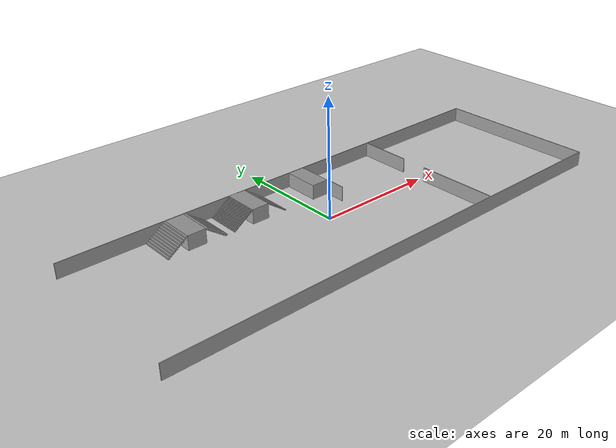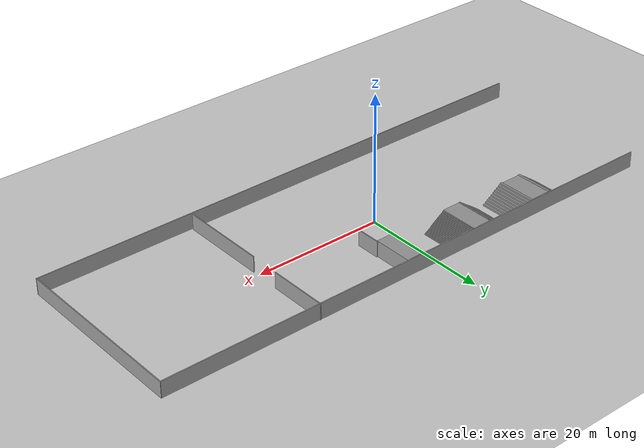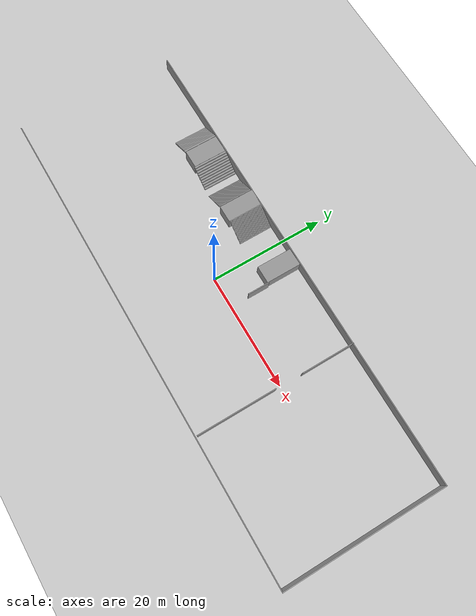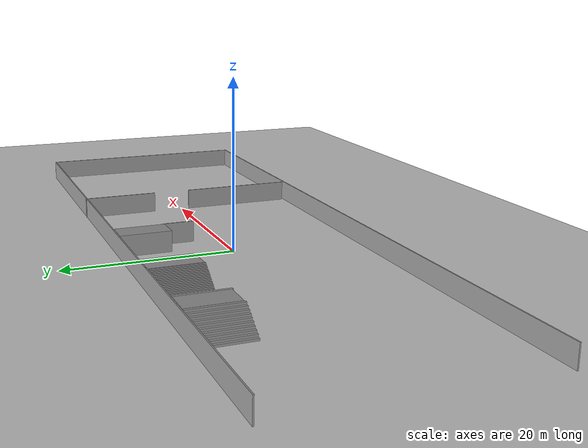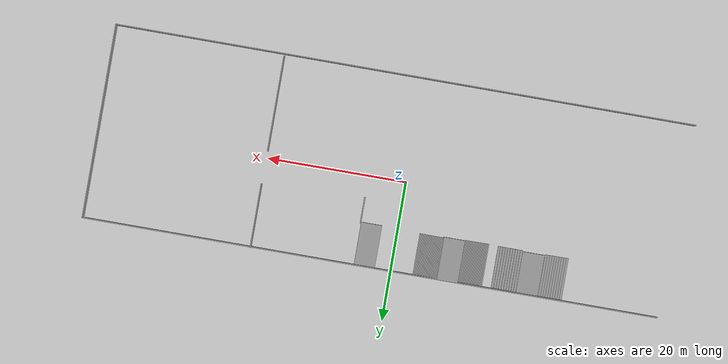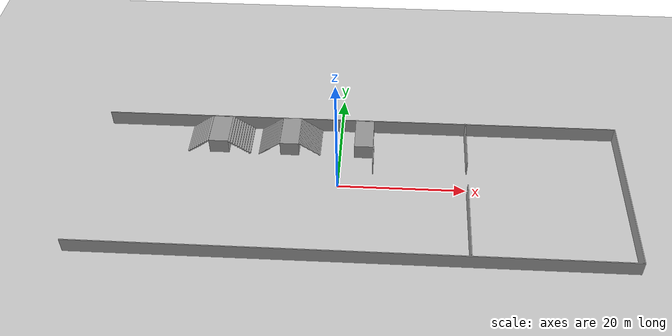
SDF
<sdf version="1.7">
 <world name="default">
  <model name="ground_plane">
   <static>1</static>
   <link name="link">
    <collision name="collision">
     <geometry><plane><normal>0 0 1</normal><size>100 100</size></plane></geometry>
     <surface>
      <contact><collide_bitmask>65535</collide_bitmask></contact>
      <friction><ode><mu>100</mu><mu2>50</mu2></ode></friction>
     </surface>
    </collision>
    <visual name="visual">
     <cast_shadows>0</cast_shadows>
     <geometry><plane><normal>0 0 1</normal><size>100 100</size></plane></geometry>
     <material>
      <script><uri>file://media/materials/scripts/gazebo.material</uri><name>Gazebo/Grey</name></script>
     </material>
    </visual>
   </link>
  </model>
  <model name="Parkour_0">
   <pose>2.61354 -1.10314 0 0 -0 0</pose>
   <link name="Stairs_4">
    <visual name="Stairs_4_Visual_0">
     <pose>1.19165 10.744 1.25 0 -0 0</pose>
     <geometry><box><size>3 6.05994 2.5</size></box></geometry>
     <material>
      <script><uri>file://media/materials/scripts/gazebo.material</uri><name>Gazebo/Grey</name></script>
      <ambient>1 1 1 1</ambient>
     </material>
     <meta><layer>0</layer></meta>
    </visual>
    <collision name="Stairs_4_Collision_0">
     <geometry><box><size>3 6.05994 2.5</size></box></geometry>
     <pose>1.19165 10.744 1.25 0 -0 0</pose>
    </collision>
   </link>
   <link name="Stairs_21">
    <visual name="Stairs_21_Visual_0">
     <pose>-10.7697 10.8664 1.25 0 -0 0</pose>
     <geometry><box><size>3 6.141 2.5</size></box></geometry>
     <material>
      <script><uri>file://media/materials/scripts/gazebo.material</uri><name>Gazebo/Grey</name></script>
      <ambient>1 1 1 1</ambient>
     </material>
     <meta><layer>0</layer></meta>
    </visual>
    <collision name="Stairs_21_Collision_0">
     <geometry><box><size>3 6.141 2.5</size></box></geometry>
     <pose>-10.7697 10.8664 1.25 0 -0 0</pose>
    </collision>
   </link>
   <link name="Stairs_22">
    <visual name="Stairs_22_Visual_0">
     <pose>-22.2123 10.8352 1.25 0 -0 0</pose>
     <geometry><box><size>3.154 5.86 2.5</size></box></geometry>
     <material>
      <script><uri>file://media/materials/scripts/gazebo.material</uri><name>Gazebo/Grey</name></script>
      <ambient>1 1 1 1</ambient>
     </material>
     <meta><layer>0</layer></meta>
    </visual>
    <collision name="Stairs_22_Collision_0">
     <geometry><box><size>3.154 5.86 2.5</size></box></geometry>
     <pose>-22.2123 10.8352 1.25 0 -0 0</pose>
    </collision>
   </link>
   <link name="Stair_fix_later">
    <visual name="Stair_fix_later_Visual_0">
     <pose>-5.89199 10.8984 0.0625 0 0 -1.5708</pose>
     <geometry><box><size>6 0.175 0.125</size></box></geometry>
     <material>
      <script><uri>file://media/materials/scripts/gazebo.material</uri><name>Gazebo/Grey</name></script>
      <ambient>1 1 1 1</ambient>
     </material>
     <meta><layer>0</layer></meta>
    </visual>
    <collision name="Stair_fix_later_Collision_0">
     <geometry><box><size>6 0.175 0.125</size></box></geometry>
     <pose>-5.89199 10.8984 0.0625 0 0 -1.5708</pose>
    </collision>
    <visual name="Stair_fix_later_Visual_1">
     <pose>-6.06699 10.8984 0.1875 0 0 -1.5708</pose>
     <geometry><box><size>6 0.175 0.125</size></box></geometry>
     <material>
      <script><uri>file://media/materials/scripts/gazebo.material</uri><name>Gazebo/Grey</name></script>
      <ambient>1 1 1 1</ambient>
     </material>
     <meta><layer>0</layer></meta>
    </visual>
    <collision name="Stair_fix_later_Collision_1">
     <geometry><box><size>6 0.175 0.125</size></box></geometry>
     <pose>-6.06699 10.8984 0.1875 0 0 -1.5708</pose>
    </collision>
    <visual name="Stair_fix_later_Visual_2">
     <pose>-6.24199 10.8984 0.3125 0 0 -1.5708</pose>
     <geometry><box><size>6 0.175 0.125</size></box></geometry>
     <material>
      <script><uri>file://media/materials/scripts/gazebo.material</uri><name>Gazebo/Grey</name></script>
      <ambient>1 1 1 1</ambient>
     </material>
     <meta><layer>0</layer></meta>
    </visual>
    <collision name="Stair_fix_later_Collision_2">
     <geometry><box><size>6 0.175 0.125</size></box></geometry>
     <pose>-6.24199 10.8984 0.3125 0 0 -1.5708</pose>
    </collision>
    <visual name="Stair_fix_later_Visual_3">
     <pose>-6.41699 10.8984 0.4375 0 0 -1.5708</pose>
     <geometry><box><size>6 0.175 0.125</size></box></geometry>
     <material>
      <script><uri>file://media/materials/scripts/gazebo.material</uri><name>Gazebo/Grey</name></script>
      <ambient>1 1 1 1</ambient>
     </material>
     <meta><layer>0</layer></meta>
    </visual>
    <collision name="Stair_fix_later_Collision_3">
     <geometry><box><size>6 0.175 0.125</size></box></geometry>
     <pose>-6.41699 10.8984 0.4375 0 0 -1.5708</pose>
    </collision>
    <visual name="Stair_fix_later_Visual_4">
     <pose>-6.59199 10.8984 0.5625 0 0 -1.5708</pose>
     <geometry><box><size>6 0.175 0.125</size></box></geometry>
     <material>
      <script><uri>file://media/materials/scripts/gazebo.material</uri><name>Gazebo/Grey</name></script>
      <ambient>1 1 1 1</ambient>
     </material>
     <meta><layer>0</layer></meta>
    </visual>
    <collision name="Stair_fix_later_Collision_4">
     <geometry><box><size>6 0.175 0.125</size></box></geometry>
     <pose>-6.59199 10.8984 0.5625 0 0 -1.5708</pose>
    </collision>
    <visual name="Stair_fix_later_Visual_5">
     <pose>-6.76699 10.8984 0.6875 0 0 -1.5708</pose>
     <geometry><box><size>6 0.175 0.125</size></box></geometry>
     <material>
      <script><uri>file://media/materials/scripts/gazebo.material</uri><name>Gazebo/Grey</name></script>
      <ambient>1 1 1 1</ambient>
     </material>
     <meta><layer>0</layer></meta>
    </visual>
    <collision name="Stair_fix_later_Collision_5">
     <geometry><box><size>6 0.175 0.125</size></box></geometry>
     <pose>-6.76699 10.8984 0.6875 0 0 -1.5708</pose>
    </collision>
    <visual name="Stair_fix_later_Visual_6">
     <pose>-6.94199 10.8984 0.8125 0 0 -1.5708</pose>
     <geometry><box><size>6 0.175 0.125</size></box></geometry>
     <material>
      <script><uri>file://media/materials/scripts/gazebo.material</uri><name>Gazebo/Grey</name></script>
      <ambient>1 1 1 1</ambient>
     </material>
     <meta><layer>0</layer></meta>
    </visual>
    <collision name="Stair_fix_later_Collision_6">
     <geometry><box><size>6 0.175 0.125</size></box></geometry>
     <pose>-6.94199 10.8984 0.8125 0 0 -1.5708</pose>
    </collision>
    <visual name="Stair_fix_later_Visual_7">
     <pose>-7.11699 10.8984 0.9375 0 0 -1.5708</pose>
     <geometry><box><size>6 0.175 0.125</size></box></geometry>
     <material>
      <script><uri>file://media/materials/scripts/gazebo.material</uri><name>Gazebo/Grey</name></script>
      <ambient>1 1 1 1</ambient>
     </material>
     <meta><layer>0</layer></meta>
    </visual>
    <collision name="Stair_fix_later_Collision_7">
     <geometry><box><size>6 0.175 0.125</size></box></geometry>
     <pose>-7.11699 10.8984 0.9375 0 0 -1.5708</pose>
    </collision>
    <visual name="Stair_fix_later_Visual_8">
     <pose>-7.29199 10.8984 1.0625 0 0 -1.5708</pose>
     <geometry><box><size>6 0.175 0.125</size></box></geometry>
     <material>
      <script><uri>file://media/materials/scripts/gazebo.material</uri><name>Gazebo/Grey</name></script>
      <ambient>1 1 1 1</ambient>
     </material>
     <meta><layer>0</layer></meta>
    </visual>
    <collision name="Stair_fix_later_Collision_8">
     <geometry><box><size>6 0.175 0.125</size></box></geometry>
     <pose>-7.29199 10.8984 1.0625 0 0 -1.5708</pose>
    </collision>
    <visual name="Stair_fix_later_Visual_9">
     <pose>-7.46699 10.8984 1.1875 0 0 -1.5708</pose>
     <geometry><box><size>6 0.175 0.125</size></box></geometry>
     <material>
      <script><uri>file://media/materials/scripts/gazebo.material</uri><name>Gazebo/Grey</name></script>
      <ambient>1 1 1 1</ambient>
     </material>
     <meta><layer>0</layer></meta>
    </visual>
    <collision name="Stair_fix_later_Collision_9">
     <geometry><box><size>6 0.175 0.125</size></box></geometry>
     <pose>-7.46699 10.8984 1.1875 0 0 -1.5708</pose>
    </collision>
    <visual name="Stair_fix_later_Visual_10">
     <pose>-7.64199 10.8984 1.3125 0 0 -1.5708</pose>
     <geometry><box><size>6 0.175 0.125</size></box></geometry>
     <material>
      <script><uri>file://media/materials/scripts/gazebo.material</uri><name>Gazebo/Grey</name></script>
      <ambient>1 1 1 1</ambient>
     </material>
     <meta><layer>0</layer></meta>
    </visual>
    <collision name="Stair_fix_later_Collision_10">
     <geometry><box><size>6 0.175 0.125</size></box></geometry>
     <pose>-7.64199 10.8984 1.3125 0 0 -1.5708</pose>
    </collision>
    <visual name="Stair_fix_later_Visual_11">
     <pose>-7.81699 10.8984 1.4375 0 0 -1.5708</pose>
     <geometry><box><size>6 0.175 0.125</size></box></geometry>
     <material>
      <script><uri>file://media/materials/scripts/gazebo.material</uri><name>Gazebo/Grey</name></script>
      <ambient>1 1 1 1</ambient>
     </material>
     <meta><layer>0</layer></meta>
    </visual>
    <collision name="Stair_fix_later_Collision_11">
     <geometry><box><size>6 0.175 0.125</size></box></geometry>
     <pose>-7.81699 10.8984 1.4375 0 0 -1.5708</pose>
    </collision>
    <visual name="Stair_fix_later_Visual_12">
     <pose>-7.99199 10.8984 1.5625 0 0 -1.5708</pose>
     <geometry><box><size>6 0.175 0.125</size></box></geometry>
     <material>
      <script><uri>file://media/materials/scripts/gazebo.material</uri><name>Gazebo/Grey</name></script>
      <ambient>1 1 1 1</ambient>
     </material>
     <meta><layer>0</layer></meta>
    </visual>
    <collision name="Stair_fix_later_Collision_12">
     <geometry><box><size>6 0.175 0.125</size></box></geometry>
     <pose>-7.99199 10.8984 1.5625 0 0 -1.5708</pose>
    </collision>
    <visual name="Stair_fix_later_Visual_13">
     <pose>-8.16699 10.8984 1.6875 0 0 -1.5708</pose>
     <geometry><box><size>6 0.175 0.125</size></box></geometry>
     <material>
      <script><uri>file://media/materials/scripts/gazebo.material</uri><name>Gazebo/Grey</name></script>
      <ambient>1 1 1 1</ambient>
     </material>
     <meta><layer>0</layer></meta>
    </visual>
    <collision name="Stair_fix_later_Collision_13">
     <geometry><box><size>6 0.175 0.125</size></box></geometry>
     <pose>-8.16699 10.8984 1.6875 0 0 -1.5708</pose>
    </collision>
    <visual name="Stair_fix_later_Visual_14">
     <pose>-8.34199 10.8984 1.8125 0 0 -1.5708</pose>
     <geometry><box><size>6 0.175 0.125</size></box></geometry>
     <material>
      <script><uri>file://media/materials/scripts/gazebo.material</uri><name>Gazebo/Grey</name></script>
      <ambient>1 1 1 1</ambient>
     </material>
     <meta><layer>0</layer></meta>
    </visual>
    <collision name="Stair_fix_later_Collision_14">
     <geometry><box><size>6 0.175 0.125</size></box></geometry>
     <pose>-8.34199 10.8984 1.8125 0 0 -1.5708</pose>
    </collision>
    <visual name="Stair_fix_later_Visual_15">
     <pose>-8.51699 10.8984 1.9375 0 0 -1.5708</pose>
     <geometry><box><size>6 0.175 0.125</size></box></geometry>
     <material>
      <script><uri>file://media/materials/scripts/gazebo.material</uri><name>Gazebo/Grey</name></script>
      <ambient>1 1 1 1</ambient>
     </material>
     <meta><layer>0</layer></meta>
    </visual>
    <collision name="Stair_fix_later_Collision_15">
     <geometry><box><size>6 0.175 0.125</size></box></geometry>
     <pose>-8.51699 10.8984 1.9375 0 0 -1.5708</pose>
    </collision>
    <visual name="Stair_fix_later_Visual_16">
     <pose>-8.69199 10.8984 2.0625 0 0 -1.5708</pose>
     <geometry><box><size>6 0.175 0.125</size></box></geometry>
     <material>
      <script><uri>file://media/materials/scripts/gazebo.material</uri><name>Gazebo/Grey</name></script>
      <ambient>1 1 1 1</ambient>
     </material>
     <meta><layer>0</layer></meta>
    </visual>
    <collision name="Stair_fix_later_Collision_16">
     <geometry><box><size>6 0.175 0.125</size></box></geometry>
     <pose>-8.69199 10.8984 2.0625 0 0 -1.5708</pose>
    </collision>
    <visual name="Stair_fix_later_Visual_17">
     <pose>-8.86699 10.8984 2.1875 0 0 -1.5708</pose>
     <geometry><box><size>6 0.175 0.125</size></box></geometry>
     <material>
      <script><uri>file://media/materials/scripts/gazebo.material</uri><name>Gazebo/Grey</name></script>
      <ambient>1 1 1 1</ambient>
     </material>
     <meta><layer>0</layer></meta>
    </visual>
    <collision name="Stair_fix_later_Collision_17">
     <geometry><box><size>6 0.175 0.125</size></box></geometry>
     <pose>-8.86699 10.8984 2.1875 0 0 -1.5708</pose>
    </collision>
    <visual name="Stair_fix_later_Visual_18">
     <pose>-9.04199 10.8984 2.3125 0 0 -1.5708</pose>
     <geometry><box><size>6 0.175 0.125</size></box></geometry>
     <material>
      <script><uri>file://media/materials/scripts/gazebo.material</uri><name>Gazebo/Grey</name></script>
      <ambient>1 1 1 1</ambient>
     </material>
     <meta><layer>0</layer></meta>
    </visual>
    <collision name="Stair_fix_later_Collision_18">
     <geometry><box><size>6 0.175 0.125</size></box></geometry>
     <pose>-9.04199 10.8984 2.3125 0 0 -1.5708</pose>
    </collision>
    <visual name="Stair_fix_later_Visual_19">
     <pose>-9.21699 10.8984 2.4375 0 0 -1.5708</pose>
     <geometry><box><size>6 0.175 0.125</size></box></geometry>
     <material>
      <script><uri>file://media/materials/scripts/gazebo.material</uri><name>Gazebo/Grey</name></script>
      <ambient>1 1 1 1</ambient>
     </material>
     <meta><layer>0</layer></meta>
    </visual>
    <collision name="Stair_fix_later_Collision_19">
     <geometry><box><size>6 0.175 0.125</size></box></geometry>
     <pose>-9.21699 10.8984 2.4375 0 0 -1.5708</pose>
    </collision>
   </link>
   <link name="Stairs_5">
    <visual name="Stairs_5_Visual_0">
     <pose>-15.7266 10.7113 0.0625 0 -0 1.5708</pose>
     <geometry><box><size>6 0.175 0.125</size></box></geometry>
     <material>
      <script><uri>file://media/materials/scripts/gazebo.material</uri><name>Gazebo/Grey</name></script>
      <ambient>1 1 1 1</ambient>
     </material>
     <meta><layer>0</layer></meta>
    </visual>
    <collision name="Stairs_5_Collision_0">
     <geometry><box><size>6 0.175 0.125</size></box></geometry>
     <pose>-15.7266 10.7113 0.0625 0 -0 1.5708</pose>
    </collision>
    <visual name="Stairs_5_Visual_1">
     <pose>-15.5516 10.7113 0.1875 0 -0 1.5708</pose>
     <geometry><box><size>6 0.175 0.125</size></box></geometry>
     <material>
      <script><uri>file://media/materials/scripts/gazebo.material</uri><name>Gazebo/Grey</name></script>
      <ambient>1 1 1 1</ambient>
     </material>
     <meta><layer>0</layer></meta>
    </visual>
    <collision name="Stairs_5_Collision_1">
     <geometry><box><size>6 0.175 0.125</size></box></geometry>
     <pose>-15.5516 10.7113 0.1875 0 -0 1.5708</pose>
    </collision>
    <visual name="Stairs_5_Visual_2">
     <pose>-15.3766 10.7113 0.3125 0 -0 1.5708</pose>
     <geometry><box><size>6 0.175 0.125</size></box></geometry>
     <material>
      <script><uri>file://media/materials/scripts/gazebo.material</uri><name>Gazebo/Grey</name></script>
      <ambient>1 1 1 1</ambient>
     </material>
     <meta><layer>0</layer></meta>
    </visual>
    <collision name="Stairs_5_Collision_2">
     <geometry><box><size>6 0.175 0.125</size></box></geometry>
     <pose>-15.3766 10.7113 0.3125 0 -0 1.5708</pose>
    </collision>
    <visual name="Stairs_5_Visual_3">
     <pose>-15.2016 10.7113 0.4375 0 -0 1.5708</pose>
     <geometry><box><size>6 0.175 0.125</size></box></geometry>
     <material>
      <script><uri>file://media/materials/scripts/gazebo.material</uri><name>Gazebo/Grey</name></script>
      <ambient>1 1 1 1</ambient>
     </material>
     <meta><layer>0</layer></meta>
    </visual>
    <collision name="Stairs_5_Collision_3">
     <geometry><box><size>6 0.175 0.125</size></box></geometry>
     <pose>-15.2016 10.7113 0.4375 0 -0 1.5708</pose>
    </collision>
    <visual name="Stairs_5_Visual_4">
     <pose>-15.0266 10.7113 0.5625 0 -0 1.5708</pose>
     <geometry><box><size>6 0.175 0.125</size></box></geometry>
     <material>
      <script><uri>file://media/materials/scripts/gazebo.material</uri><name>Gazebo/Grey</name></script>
      <ambient>1 1 1 1</ambient>
     </material>
     <meta><layer>0</layer></meta>
    </visual>
    <collision name="Stairs_5_Collision_4">
     <geometry><box><size>6 0.175 0.125</size></box></geometry>
     <pose>-15.0266 10.7113 0.5625 0 -0 1.5708</pose>
    </collision>
    <visual name="Stairs_5_Visual_5">
     <pose>-14.8516 10.7113 0.6875 0 -0 1.5708</pose>
     <geometry><box><size>6 0.175 0.125</size></box></geometry>
     <material>
      <script><uri>file://media/materials/scripts/gazebo.material</uri><name>Gazebo/Grey</name></script>
      <ambient>1 1 1 1</ambient>
     </material>
     <meta><layer>0</layer></meta>
    </visual>
    <collision name="Stairs_5_Collision_5">
     <geometry><box><size>6 0.175 0.125</size></box></geometry>
     <pose>-14.8516 10.7113 0.6875 0 -0 1.5708</pose>
    </collision>
    <visual name="Stairs_5_Visual_6">
     <pose>-14.6766 10.7113 0.8125 0 -0 1.5708</pose>
     <geometry><box><size>6 0.175 0.125</size></box></geometry>
     <material>
      <script><uri>file://media/materials/scripts/gazebo.material</uri><name>Gazebo/Grey</name></script>
      <ambient>1 1 1 1</ambient>
     </material>
     <meta><layer>0</layer></meta>
    </visual>
    <collision name="Stairs_5_Collision_6">
     <geometry><box><size>6 0.175 0.125</size></box></geometry>
     <pose>-14.6766 10.7113 0.8125 0 -0 1.5708</pose>
    </collision>
    <visual name="Stairs_5_Visual_7">
     <pose>-14.5016 10.7113 0.9375 0 -0 1.5708</pose>
     <geometry><box><size>6 0.175 0.125</size></box></geometry>
     <material>
      <script><uri>file://media/materials/scripts/gazebo.material</uri><name>Gazebo/Grey</name></script>
      <ambient>1 1 1 1</ambient>
     </material>
     <meta><layer>0</layer></meta>
    </visual>
    <collision name="Stairs_5_Collision_7">
     <geometry><box><size>6 0.175 0.125</size></box></geometry>
     <pose>-14.5016 10.7113 0.9375 0 -0 1.5708</pose>
    </collision>
    <visual name="Stairs_5_Visual_8">
     <pose>-14.3266 10.7113 1.0625 0 -0 1.5708</pose>
     <geometry><box><size>6 0.175 0.125</size></box></geometry>
     <material>
      <script><uri>file://media/materials/scripts/gazebo.material</uri><name>Gazebo/Grey</name></script>
      <ambient>1 1 1 1</ambient>
     </material>
     <meta><layer>0</layer></meta>
    </visual>
    <collision name="Stairs_5_Collision_8">
     <geometry><box><size>6 0.175 0.125</size></box></geometry>
     <pose>-14.3266 10.7113 1.0625 0 -0 1.5708</pose>
    </collision>
    <visual name="Stairs_5_Visual_9">
     <pose>-14.1516 10.7113 1.1875 0 -0 1.5708</pose>
     <geometry><box><size>6 0.175 0.125</size></box></geometry>
     <material>
      <script><uri>file://media/materials/scripts/gazebo.material</uri><name>Gazebo/Grey</name></script>
      <ambient>1 1 1 1</ambient>
     </material>
     <meta><layer>0</layer></meta>
    </visual>
    <collision name="Stairs_5_Collision_9">
     <geometry><box><size>6 0.175 0.125</size></box></geometry>
     <pose>-14.1516 10.7113 1.1875 0 -0 1.5708</pose>
    </collision>
    <visual name="Stairs_5_Visual_10">
     <pose>-13.9766 10.7113 1.3125 0 -0 1.5708</pose>
     <geometry><box><size>6 0.175 0.125</size></box></geometry>
     <material>
      <script><uri>file://media/materials/scripts/gazebo.material</uri><name>Gazebo/Grey</name></script>
      <ambient>1 1 1 1</ambient>
     </material>
     <meta><layer>0</layer></meta>
    </visual>
    <collision name="Stairs_5_Collision_10">
     <geometry><box><size>6 0.175 0.125</size></box></geometry>
     <pose>-13.9766 10.7113 1.3125 0 -0 1.5708</pose>
    </collision>
    <visual name="Stairs_5_Visual_11">
     <pose>-13.8016 10.7113 1.4375 0 -0 1.5708</pose>
     <geometry><box><size>6 0.175 0.125</size></box></geometry>
     <material>
      <script><uri>file://media/materials/scripts/gazebo.material</uri><name>Gazebo/Grey</name></script>
      <ambient>1 1 1 1</ambient>
     </material>
     <meta><layer>0</layer></meta>
    </visual>
    <collision name="Stairs_5_Collision_11">
     <geometry><box><size>6 0.175 0.125</size></box></geometry>
     <pose>-13.8016 10.7113 1.4375 0 -0 1.5708</pose>
    </collision>
    <visual name="Stairs_5_Visual_12">
     <pose>-13.6266 10.7113 1.5625 0 -0 1.5708</pose>
     <geometry><box><size>6 0.175 0.125</size></box></geometry>
     <material>
      <script><uri>file://media/materials/scripts/gazebo.material</uri><name>Gazebo/Grey</name></script>
      <ambient>1 1 1 1</ambient>
     </material>
     <meta><layer>0</layer></meta>
    </visual>
    <collision name="Stairs_5_Collision_12">
     <geometry><box><size>6 0.175 0.125</size></box></geometry>
     <pose>-13.6266 10.7113 1.5625 0 -0 1.5708</pose>
    </collision>
    <visual name="Stairs_5_Visual_13">
     <pose>-13.4516 10.7113 1.6875 0 -0 1.5708</pose>
     <geometry><box><size>6 0.175 0.125</size></box></geometry>
     <material>
      <script><uri>file://media/materials/scripts/gazebo.material</uri><name>Gazebo/Grey</name></script>
      <ambient>1 1 1 1</ambient>
     </material>
     <meta><layer>0</layer></meta>
    </visual>
    <collision name="Stairs_5_Collision_13">
     <geometry><box><size>6 0.175 0.125</size></box></geometry>
     <pose>-13.4516 10.7113 1.6875 0 -0 1.5708</pose>
    </collision>
    <visual name="Stairs_5_Visual_14">
     <pose>-13.2766 10.7113 1.8125 0 -0 1.5708</pose>
     <geometry><box><size>6 0.175 0.125</size></box></geometry>
     <material>
      <script><uri>file://media/materials/scripts/gazebo.material</uri><name>Gazebo/Grey</name></script>
      <ambient>1 1 1 1</ambient>
     </material>
     <meta><layer>0</layer></meta>
    </visual>
    <collision name="Stairs_5_Collision_14">
     <geometry><box><size>6 0.175 0.125</size></box></geometry>
     <pose>-13.2766 10.7113 1.8125 0 -0 1.5708</pose>
    </collision>
    <visual name="Stairs_5_Visual_15">
     <pose>-13.1016 10.7113 1.9375 0 -0 1.5708</pose>
     <geometry><box><size>6 0.175 0.125</size></box></geometry>
     <material>
      <script><uri>file://media/materials/scripts/gazebo.material</uri><name>Gazebo/Grey</name></script>
      <ambient>1 1 1 1</ambient>
     </material>
     <meta><layer>0</layer></meta>
    </visual>
    <collision name="Stairs_5_Collision_15">
     <geometry><box><size>6 0.175 0.125</size></box></geometry>
     <pose>-13.1016 10.7113 1.9375 0 -0 1.5708</pose>
    </collision>
    <visual name="Stairs_5_Visual_16">
     <pose>-12.9266 10.7113 2.0625 0 -0 1.5708</pose>
     <geometry><box><size>6 0.175 0.125</size></box></geometry>
     <material>
      <script><uri>file://media/materials/scripts/gazebo.material</uri><name>Gazebo/Grey</name></script>
      <ambient>1 1 1 1</ambient>
     </material>
     <meta><layer>0</layer></meta>
    </visual>
    <collision name="Stairs_5_Collision_16">
     <geometry><box><size>6 0.175 0.125</size></box></geometry>
     <pose>-12.9266 10.7113 2.0625 0 -0 1.5708</pose>
    </collision>
    <visual name="Stairs_5_Visual_17">
     <pose>-12.7516 10.7113 2.1875 0 -0 1.5708</pose>
     <geometry><box><size>6 0.175 0.125</size></box></geometry>
     <material>
      <script><uri>file://media/materials/scripts/gazebo.material</uri><name>Gazebo/Grey</name></script>
      <ambient>1 1 1 1</ambient>
     </material>
     <meta><layer>0</layer></meta>
    </visual>
    <collision name="Stairs_5_Collision_17">
     <geometry><box><size>6 0.175 0.125</size></box></geometry>
     <pose>-12.7516 10.7113 2.1875 0 -0 1.5708</pose>
    </collision>
    <visual name="Stairs_5_Visual_18">
     <pose>-12.5766 10.7113 2.3125 0 -0 1.5708</pose>
     <geometry><box><size>6 0.175 0.125</size></box></geometry>
     <material>
      <script><uri>file://media/materials/scripts/gazebo.material</uri><name>Gazebo/Grey</name></script>
      <ambient>1 1 1 1</ambient>
     </material>
     <meta><layer>0</layer></meta>
    </visual>
    <collision name="Stairs_5_Collision_18">
     <geometry><box><size>6 0.175 0.125</size></box></geometry>
     <pose>-12.5766 10.7113 2.3125 0 -0 1.5708</pose>
    </collision>
    <visual name="Stairs_5_Visual_19">
     <pose>-12.4016 10.7113 2.4375 0 -0 1.5708</pose>
     <geometry><box><size>6 0.175 0.125</size></box></geometry>
     <material>
      <script><uri>file://media/materials/scripts/gazebo.material</uri><name>Gazebo/Grey</name></script>
      <ambient>1 1 1 1</ambient>
     </material>
     <meta><layer>0</layer></meta>
    </visual>
    <collision name="Stairs_5_Collision_19">
     <geometry><box><size>6 0.175 0.125</size></box></geometry>
     <pose>-12.4016 10.7113 2.4375 0 -0 1.5708</pose>
    </collision>
   </link>
   <link name="Stairs_7">
    <visual name="Stairs_7_Visual_0">
     <pose>-17.3013 10.7628 0.125 0 0 -1.5708</pose>
     <geometry><box><size>6 0.35 0.25</size></box></geometry>
     <material>
      <script><uri>file://media/materials/scripts/gazebo.material</uri><name>Gazebo/Grey</name></script>
      <ambient>1 1 1 1</ambient>
     </material>
     <meta><layer>0</layer></meta>
    </visual>
    <collision name="Stairs_7_Collision_0">
     <geometry><box><size>6 0.35 0.25</size></box></geometry>
     <pose>-17.3013 10.7628 0.125 0 0 -1.5708</pose>
    </collision>
    <visual name="Stairs_7_Visual_1">
     <pose>-17.6513 10.7628 0.375 0 0 -1.5708</pose>
     <geometry><box><size>6 0.35 0.25</size></box></geometry>
     <material>
      <script><uri>file://media/materials/scripts/gazebo.material</uri><name>Gazebo/Grey</name></script>
      <ambient>1 1 1 1</ambient>
     </material>
     <meta><layer>0</layer></meta>
    </visual>
    <collision name="Stairs_7_Collision_1">
     <geometry><box><size>6 0.35 0.25</size></box></geometry>
     <pose>-17.6513 10.7628 0.375 0 0 -1.5708</pose>
    </collision>
    <visual name="Stairs_7_Visual_2">
     <pose>-18.0013 10.7628 0.625 0 0 -1.5708</pose>
     <geometry><box><size>6 0.35 0.25</size></box></geometry>
     <material>
      <script><uri>file://media/materials/scripts/gazebo.material</uri><name>Gazebo/Grey</name></script>
      <ambient>1 1 1 1</ambient>
     </material>
     <meta><layer>0</layer></meta>
    </visual>
    <collision name="Stairs_7_Collision_2">
     <geometry><box><size>6 0.35 0.25</size></box></geometry>
     <pose>-18.0013 10.7628 0.625 0 0 -1.5708</pose>
    </collision>
    <visual name="Stairs_7_Visual_3">
     <pose>-18.3513 10.7628 0.875 0 0 -1.5708</pose>
     <geometry><box><size>6 0.35 0.25</size></box></geometry>
     <material>
      <script><uri>file://media/materials/scripts/gazebo.material</uri><name>Gazebo/Grey</name></script>
      <ambient>1 1 1 1</ambient>
     </material>
     <meta><layer>0</layer></meta>
    </visual>
    <collision name="Stairs_7_Collision_3">
     <geometry><box><size>6 0.35 0.25</size></box></geometry>
     <pose>-18.3513 10.7628 0.875 0 0 -1.5708</pose>
    </collision>
    <visual name="Stairs_7_Visual_4">
     <pose>-18.7013 10.7628 1.125 0 0 -1.5708</pose>
     <geometry><box><size>6 0.35 0.25</size></box></geometry>
     <material>
      <script><uri>file://media/materials/scripts/gazebo.material</uri><name>Gazebo/Grey</name></script>
      <ambient>1 1 1 1</ambient>
     </material>
     <meta><layer>0</layer></meta>
    </visual>
    <collision name="Stairs_7_Collision_4">
     <geometry><box><size>6 0.35 0.25</size></box></geometry>
     <pose>-18.7013 10.7628 1.125 0 0 -1.5708</pose>
    </collision>
    <visual name="Stairs_7_Visual_5">
     <pose>-19.0513 10.7628 1.375 0 0 -1.5708</pose>
     <geometry><box><size>6 0.35 0.25</size></box></geometry>
     <material>
      <script><uri>file://media/materials/scripts/gazebo.material</uri><name>Gazebo/Grey</name></script>
      <ambient>1 1 1 1</ambient>
     </material>
     <meta><layer>0</layer></meta>
    </visual>
    <collision name="Stairs_7_Collision_5">
     <geometry><box><size>6 0.35 0.25</size></box></geometry>
     <pose>-19.0513 10.7628 1.375 0 0 -1.5708</pose>
    </collision>
    <visual name="Stairs_7_Visual_6">
     <pose>-19.4013 10.7628 1.625 0 0 -1.5708</pose>
     <geometry><box><size>6 0.35 0.25</size></box></geometry>
     <material>
      <script><uri>file://media/materials/scripts/gazebo.material</uri><name>Gazebo/Grey</name></script>
      <ambient>1 1 1 1</ambient>
     </material>
     <meta><layer>0</layer></meta>
    </visual>
    <collision name="Stairs_7_Collision_6">
     <geometry><box><size>6 0.35 0.25</size></box></geometry>
     <pose>-19.4013 10.7628 1.625 0 0 -1.5708</pose>
    </collision>
    <visual name="Stairs_7_Visual_7">
     <pose>-19.7513 10.7628 1.875 0 0 -1.5708</pose>
     <geometry><box><size>6 0.35 0.25</size></box></geometry>
     <material>
      <script><uri>file://media/materials/scripts/gazebo.material</uri><name>Gazebo/Grey</name></script>
      <ambient>1 1 1 1</ambient>
     </material>
     <meta><layer>0</layer></meta>
    </visual>
    <collision name="Stairs_7_Collision_7">
     <geometry><box><size>6 0.35 0.25</size></box></geometry>
     <pose>-19.7513 10.7628 1.875 0 0 -1.5708</pose>
    </collision>
    <visual name="Stairs_7_Visual_8">
     <pose>-20.1013 10.7628 2.125 0 0 -1.5708</pose>
     <geometry><box><size>6 0.35 0.25</size></box></geometry>
     <material>
      <script><uri>file://media/materials/scripts/gazebo.material</uri><name>Gazebo/Grey</name></script>
      <ambient>1 1 1 1</ambient>
     </material>
     <meta><layer>0</layer></meta>
    </visual>
    <collision name="Stairs_7_Collision_8">
     <geometry><box><size>6 0.35 0.25</size></box></geometry>
     <pose>-20.1013 10.7628 2.125 0 0 -1.5708</pose>
    </collision>
    <visual name="Stairs_7_Visual_9">
     <pose>-20.4513 10.7628 2.375 0 0 -1.5708</pose>
     <geometry><box><size>6 0.35 0.25</size></box></geometry>
     <material>
      <script><uri>file://media/materials/scripts/gazebo.material</uri><name>Gazebo/Grey</name></script>
      <ambient>1 1 1 1</ambient>
     </material>
     <meta><layer>0</layer></meta>
    </visual>
    <collision name="Stairs_7_Collision_9">
     <geometry><box><size>6 0.35 0.25</size></box></geometry>
     <pose>-20.4513 10.7628 2.375 0 0 -1.5708</pose>
    </collision>
   </link>
   <link name="Stairs_9">
    <visual name="Stairs_9_Visual_0">
     <pose>-27.149 10.758 0.125 0 -0 1.5708</pose>
     <geometry><box><size>5.96 0.35 0.25</size></box></geometry>
     <material>
      <script><uri>file://media/materials/scripts/gazebo.material</uri><name>Gazebo/Grey</name></script>
      <ambient>1 1 1 1</ambient>
     </material>
     <meta><layer>0</layer></meta>
    </visual>
    <collision name="Stairs_9_Collision_0">
     <geometry><box><size>5.96 0.35 0.25</size></box></geometry>
     <pose>-27.149 10.758 0.125 0 -0 1.5708</pose>
    </collision>
    <visual name="Stairs_9_Visual_1">
     <pose>-26.799 10.758 0.375 0 -0 1.5708</pose>
     <geometry><box><size>5.96 0.35 0.25</size></box></geometry>
     <material>
      <script><uri>file://media/materials/scripts/gazebo.material</uri><name>Gazebo/Grey</name></script>
      <ambient>1 1 1 1</ambient>
     </material>
     <meta><layer>0</layer></meta>
    </visual>
    <collision name="Stairs_9_Collision_1">
     <geometry><box><size>5.96 0.35 0.25</size></box></geometry>
     <pose>-26.799 10.758 0.375 0 -0 1.5708</pose>
    </collision>
    <visual name="Stairs_9_Visual_2">
     <pose>-26.449 10.758 0.625 0 -0 1.5708</pose>
     <geometry><box><size>5.96 0.35 0.25</size></box></geometry>
     <material>
      <script><uri>file://media/materials/scripts/gazebo.material</uri><name>Gazebo/Grey</name></script>
      <ambient>1 1 1 1</ambient>
     </material>
     <meta><layer>0</layer></meta>
    </visual>
    <collision name="Stairs_9_Collision_2">
     <geometry><box><size>5.96 0.35 0.25</size></box></geometry>
     <pose>-26.449 10.758 0.625 0 -0 1.5708</pose>
    </collision>
    <visual name="Stairs_9_Visual_3">
     <pose>-26.099 10.758 0.875 0 -0 1.5708</pose>
     <geometry><box><size>5.96 0.35 0.25</size></box></geometry>
     <material>
      <script><uri>file://media/materials/scripts/gazebo.material</uri><name>Gazebo/Grey</name></script>
      <ambient>1 1 1 1</ambient>
     </material>
     <meta><layer>0</layer></meta>
    </visual>
    <collision name="Stairs_9_Collision_3">
     <geometry><box><size>5.96 0.35 0.25</size></box></geometry>
     <pose>-26.099 10.758 0.875 0 -0 1.5708</pose>
    </collision>
    <visual name="Stairs_9_Visual_4">
     <pose>-25.749 10.758 1.125 0 -0 1.5708</pose>
     <geometry><box><size>5.96 0.35 0.25</size></box></geometry>
     <material>
      <script><uri>file://media/materials/scripts/gazebo.material</uri><name>Gazebo/Grey</name></script>
      <ambient>1 1 1 1</ambient>
     </material>
     <meta><layer>0</layer></meta>
    </visual>
    <collision name="Stairs_9_Collision_4">
     <geometry><box><size>5.96 0.35 0.25</size></box></geometry>
     <pose>-25.749 10.758 1.125 0 -0 1.5708</pose>
    </collision>
    <visual name="Stairs_9_Visual_5">
     <pose>-25.399 10.758 1.375 0 -0 1.5708</pose>
     <geometry><box><size>5.96 0.35 0.25</size></box></geometry>
     <material>
      <script><uri>file://media/materials/scripts/gazebo.material</uri><name>Gazebo/Grey</name></script>
      <ambient>1 1 1 1</ambient>
     </material>
     <meta><layer>0</layer></meta>
    </visual>
    <collision name="Stairs_9_Collision_5">
     <geometry><box><size>5.96 0.35 0.25</size></box></geometry>
     <pose>-25.399 10.758 1.375 0 -0 1.5708</pose>
    </collision>
    <visual name="Stairs_9_Visual_6">
     <pose>-25.049 10.758 1.625 0 -0 1.5708</pose>
     <geometry><box><size>5.96 0.35 0.25</size></box></geometry>
     <material>
      <script><uri>file://media/materials/scripts/gazebo.material</uri><name>Gazebo/Grey</name></script>
      <ambient>1 1 1 1</ambient>
     </material>
     <meta><layer>0</layer></meta>
    </visual>
    <collision name="Stairs_9_Collision_6">
     <geometry><box><size>5.96 0.35 0.25</size></box></geometry>
     <pose>-25.049 10.758 1.625 0 -0 1.5708</pose>
    </collision>
    <visual name="Stairs_9_Visual_7">
     <pose>-24.699 10.758 1.875 0 -0 1.5708</pose>
     <geometry><box><size>5.96 0.35 0.25</size></box></geometry>
     <material>
      <script><uri>file://media/materials/scripts/gazebo.material</uri><name>Gazebo/Grey</name></script>
      <ambient>1 1 1 1</ambient>
     </material>
     <meta><layer>0</layer></meta>
    </visual>
    <collision name="Stairs_9_Collision_7">
     <geometry><box><size>5.96 0.35 0.25</size></box></geometry>
     <pose>-24.699 10.758 1.875 0 -0 1.5708</pose>
    </collision>
    <visual name="Stairs_9_Visual_8">
     <pose>-24.349 10.758 2.125 0 -0 1.5708</pose>
     <geometry><box><size>5.96 0.35 0.25</size></box></geometry>
     <material>
      <script><uri>file://media/materials/scripts/gazebo.material</uri><name>Gazebo/Grey</name></script>
      <ambient>1 1 1 1</ambient>
     </material>
     <meta><layer>0</layer></meta>
    </visual>
    <collision name="Stairs_9_Collision_8">
     <geometry><box><size>5.96 0.35 0.25</size></box></geometry>
     <pose>-24.349 10.758 2.125 0 -0 1.5708</pose>
    </collision>
    <visual name="Stairs_9_Visual_9">
     <pose>-23.999 10.758 2.375 0 -0 1.5708</pose>
     <geometry><box><size>5.96 0.35 0.25</size></box></geometry>
     <material>
      <script><uri>file://media/materials/scripts/gazebo.material</uri><name>Gazebo/Grey</name></script>
      <ambient>1 1 1 1</ambient>
     </material>
     <meta><layer>0</layer></meta>
    </visual>
    <collision name="Stairs_9_Collision_9">
     <geometry><box><size>5.96 0.35 0.25</size></box></geometry>
     <pose>-23.999 10.758 2.375 0 -0 1.5708</pose>
    </collision>
   </link>
   <link name="Wall_10">
    <collision name="Wall_10_Collision">
     <geometry><box><size>13.75 0.15 2.5</size></box></geometry>
     <pose>0 0 1.25 0 -0 0</pose>
    </collision>
    <visual name="Wall_10_Visual">
     <pose>0 0 1.25 0 -0 0</pose>
     <geometry><box><size>13.75 0.15 2.5</size></box></geometry>
     <material>
      <script><uri>file://media/materials/scripts/gazebo.material</uri><name>Gazebo/Grey</name></script>
      <ambient>1 1 1 1</ambient>
     </material>
     <meta><layer>0</layer></meta>
    </visual>
    <pose>17.5299 -6.77584 0 0 -0 -1.5708</pose>
   </link>
   <link name="Wall_2">
    <collision name="Wall_2_Collision">
     <geometry><box><size>83 0.15 2.5</size></box></geometry>
     <pose>0 0 1.25 0 -0 0</pose>
    </collision>
    <visual name="Wall_2_Visual">
     <pose>0 0 1.25 0 -0 0</pose>
     <geometry><box><size>83 0.15 2.5</size></box></geometry>
     <material>
      <script><uri>file://media/materials/scripts/gazebo.material</uri><name>Gazebo/Grey</name></script>
      <ambient>1 1 1 1</ambient>
     </material>
     <meta><layer>0</layer></meta>
    </visual>
    <pose>0.402997 13.8867 0 0 -0 0</pose>
   </link>
   <link name="Wall_3">
    <collision name="Wall_3_Collision">
     <geometry><box><size>28 0.15 2.5</size></box></geometry>
     <pose>0 0 1.25 0 -0 0</pose>
    </collision>
    <visual name="Wall_3_Visual">
     <pose>0 0 1.25 0 -0 0</pose>
     <geometry><box><size>28 0.15 2.5</size></box></geometry>
     <material>
      <script><uri>file://media/materials/scripts/gazebo.material</uri><name>Gazebo/Grey</name></script>
      <ambient>1 1 1 1</ambient>
     </material>
     <meta><layer>0</layer></meta>
    </visual>
    <pose>41.828 -0.038302 0 0 -0 -1.5708</pose>
   </link>
   <link name="Wall_4">
    <collision name="Wall_4_Collision">
     <geometry><box><size>83.75 0.15 2.5</size></box></geometry>
     <pose>0 0 1.25 0 -0 0</pose>
    </collision>
    <visual name="Wall_4_Visual">
     <pose>0 0 1.25 0 -0 0</pose>
     <geometry><box><size>83.75 0.15 2.5</size></box></geometry>
     <material>
      <script><uri>file://media/materials/scripts/gazebo.material</uri><name>Gazebo/Grey</name></script>
      <ambient>1 1 1 1</ambient>
     </material>
     <meta><layer>0</layer></meta>
    </visual>
    <pose>0.027997 -13.9633 0 0 -0 3.14159</pose>
   </link>
   <link name="Wall_59">
    <collision name="Wall_59_Collision">
     <geometry><box><size>3.75 0.15 2.5</size></box></geometry>
     <pose>0 0 1.25 0 -0 0</pose>
    </collision>
    <visual name="Wall_59_Visual">
     <pose>0 0 1.25 0 -0 0</pose>
     <geometry><box><size>3.75 0.15 2.5</size></box></geometry>
     <material>
      <script><uri>file://media/materials/scripts/gazebo.material</uri><name>Gazebo/Grey</name></script>
      <ambient>1 1 1 1</ambient>
     </material>
     <meta><layer>0</layer></meta>
    </visual>
    <pose>2.78307 6.01602 0 0 -0 -1.5708</pose>
   </link>
   <link name="Wall_8">
    <collision name="Wall_8_Collision">
     <geometry><box><size>9.25 0.15 2.5</size></box></geometry>
     <pose>0 0 1.25 0 -0 0</pose>
    </collision>
    <visual name="Wall_8_Visual">
     <pose>0 0 1.25 0 -0 0</pose>
     <geometry><box><size>9.25 0.15 2.5</size></box></geometry>
     <material>
      <script><uri>file://media/materials/scripts/gazebo.material</uri><name>Gazebo/Grey</name></script>
      <ambient>1 1 1 1</ambient>
     </material>
     <meta><layer>0</layer></meta>
    </visual>
    <pose>17.6006 9.4133 0 0 -0 -1.5708</pose>
   </link>
   <static>1</static>
  </model>
 </world>
</sdf>
